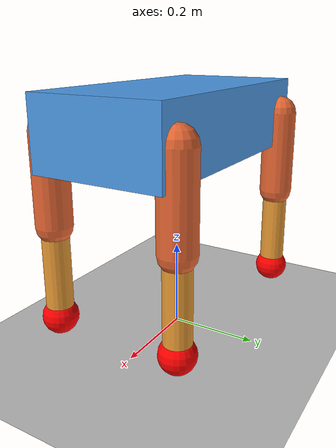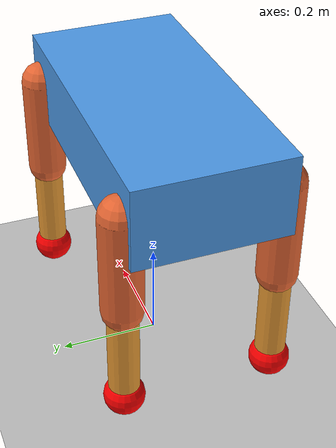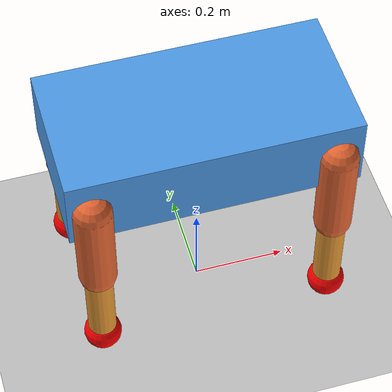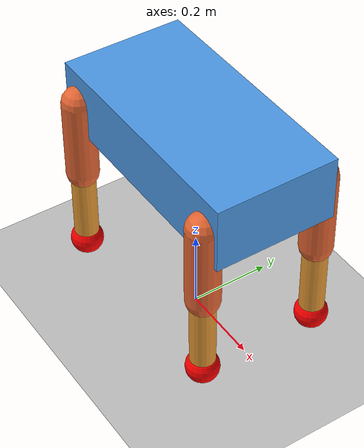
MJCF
<mujoco model="quadruped">

  <option timestep="0.002" gravity="0 0 -9.81"/>

  <default>
    <joint damping="0.5"/>
    <geom condim="3" friction="0.8 0.02 0.01"/>
  </default>

  <worldbody>
    <geom name="floor" type="plane" size="20 20 0.1" rgba="0.75 0.75 0.75 1"
          condim="3" friction="0.8 0.02 0.01"/>

    <body name="torso" pos="0 0 0.5">
      <freejoint name="root"/>
      <geom name="torso_geom" type="box" size="0.3 0.15 0.08"
            rgba="0.3 0.6 0.9 1" mass="5"/>

      <body name="fl_thigh" pos="0.25 0.15 0">
        <joint name="fl_hip" type="hinge" axis="0 1 0" range="-60 60" damping="0.5"/>
        <geom name="fl_thigh_geom" type="capsule" fromto="0 0 0 0 0 -0.2"
              size="0.04" rgba="0.9 0.4 0.2 1" mass="0.5"/>
        <body name="fl_shin" pos="0 0 -0.2">
          <joint name="fl_knee" type="hinge" axis="0 1 0" range="-120 0" damping="0.5"/>
          <geom name="fl_shin_geom" type="capsule" fromto="0 0 0 0 0 -0.2"
                size="0.03" rgba="0.9 0.6 0.2 1" mass="0.3"/>
          <site name="fl_foot" pos="0 0 -0.21" size="0.04" rgba="1 0 0 1"/>
        </body>
      </body>

      <body name="fr_thigh" pos="0.25 -0.15 0">
        <joint name="fr_hip" type="hinge" axis="0 1 0" range="-60 60" damping="0.5"/>
        <geom name="fr_thigh_geom" type="capsule" fromto="0 0 0 0 0 -0.2"
              size="0.04" rgba="0.9 0.4 0.2 1" mass="0.5"/>
        <body name="fr_shin" pos="0 0 -0.2">
          <joint name="fr_knee" type="hinge" axis="0 1 0" range="-120 0" damping="0.5"/>
          <geom name="fr_shin_geom" type="capsule" fromto="0 0 0 0 0 -0.2"
                size="0.03" rgba="0.9 0.6 0.2 1" mass="0.3"/>
          <site name="fr_foot" pos="0 0 -0.21" size="0.04" rgba="1 0 0 1"/>
        </body>
      </body>

      <body name="bl_thigh" pos="-0.25 0.15 0">
        <joint name="bl_hip" type="hinge" axis="0 1 0" range="-60 60" damping="0.5"/>
        <geom name="bl_thigh_geom" type="capsule" fromto="0 0 0 0 0 -0.2"
              size="0.04" rgba="0.9 0.4 0.2 1" mass="0.5"/>
        <body name="bl_shin" pos="0 0 -0.2">
          <joint name="bl_knee" type="hinge" axis="0 1 0" range="-120 0" damping="0.5"/>
          <geom name="bl_shin_geom" type="capsule" fromto="0 0 0 0 0 -0.2"
                size="0.03" rgba="0.9 0.6 0.2 1" mass="0.3"/>
          <site name="bl_foot" pos="0 0 -0.21" size="0.04" rgba="1 0 0 1"/>
        </body>
      </body>

      <body name="br_thigh" pos="-0.25 -0.15 0">
        <joint name="br_hip" type="hinge" axis="0 1 0" range="-60 60" damping="0.5"/>
        <geom name="br_thigh_geom" type="capsule" fromto="0 0 0 0 0 -0.2"
              size="0.04" rgba="0.9 0.4 0.2 1" mass="0.5"/>
        <body name="br_shin" pos="0 0 -0.2">
          <joint name="br_knee" type="hinge" axis="0 1 0" range="-120 0" damping="0.5"/>
          <geom name="br_shin_geom" type="capsule" fromto="0 0 0 0 0 -0.2"
                size="0.03" rgba="0.9 0.6 0.2 1" mass="0.3"/>
          <site name="br_foot" pos="0 0 -0.21" size="0.04" rgba="1 0 0 1"/>
        </body>
      </body>

    </body>
  </worldbody>

  <actuator>
    <position name="fl_hip_act"  joint="fl_hip"  kp="50" ctrlrange="-1.05 1.05"/>
    <position name="fl_knee_act" joint="fl_knee" kp="50" ctrlrange="-2.09 0"/>
    <position name="fr_hip_act"  joint="fr_hip"  kp="50" ctrlrange="-1.05 1.05"/>
    <position name="fr_knee_act" joint="fr_knee" kp="50" ctrlrange="-2.09 0"/>
    <position name="bl_hip_act"  joint="bl_hip"  kp="50" ctrlrange="-1.05 1.05"/>
    <position name="bl_knee_act" joint="bl_knee" kp="50" ctrlrange="-2.09 0"/>
    <position name="br_hip_act"  joint="br_hip"  kp="50" ctrlrange="-1.05 1.05"/>
    <position name="br_knee_act" joint="br_knee" kp="50" ctrlrange="-2.09 0"/>
  </actuator>

  <sensor>
    <touch name="fl_touch" site="fl_foot"/>
    <touch name="fr_touch" site="fr_foot"/>
    <touch name="bl_touch" site="bl_foot"/>
    <touch name="br_touch" site="br_foot"/>
  </sensor>

</mujoco>
